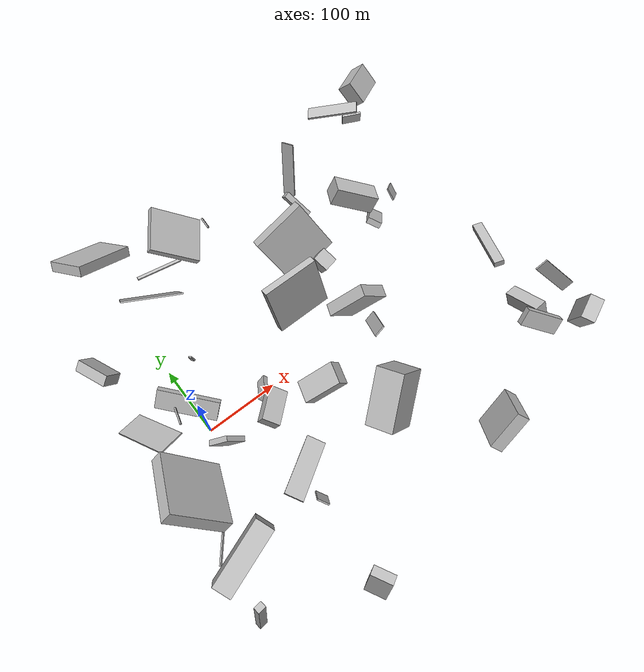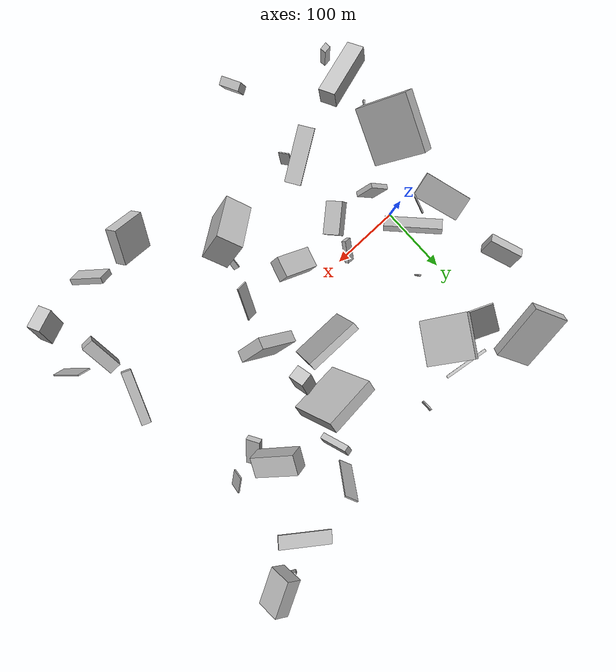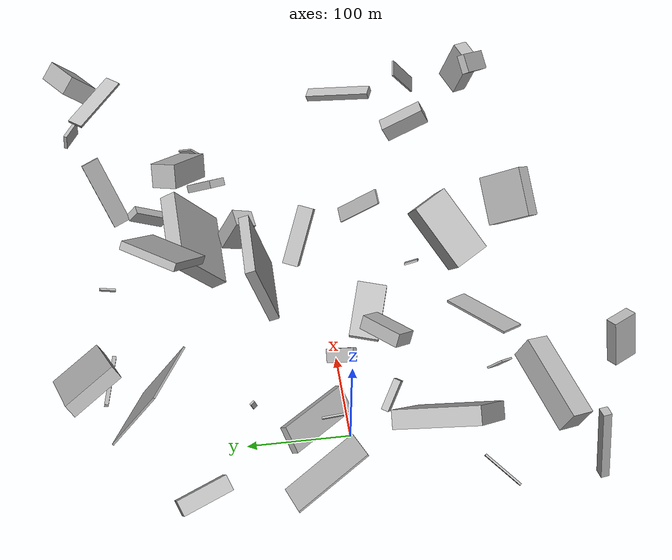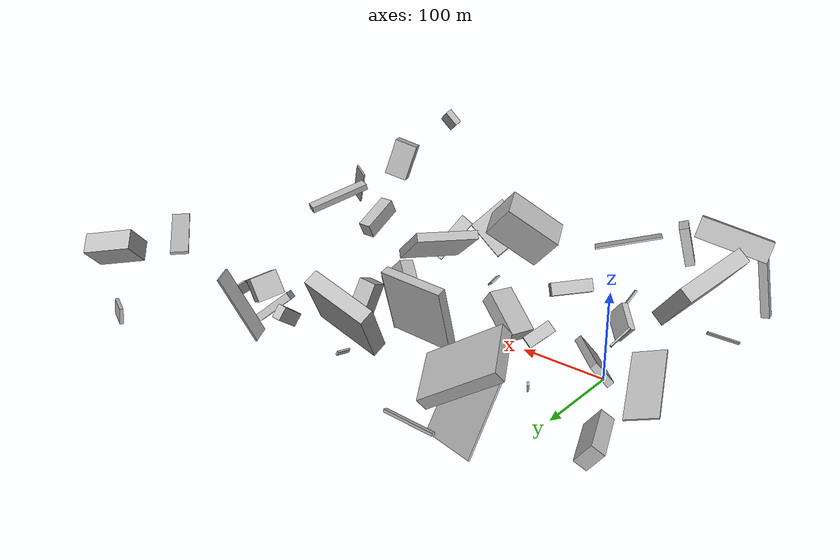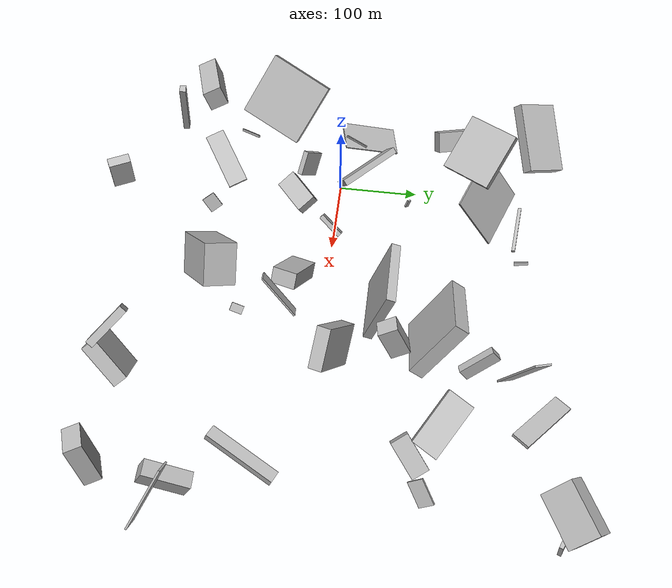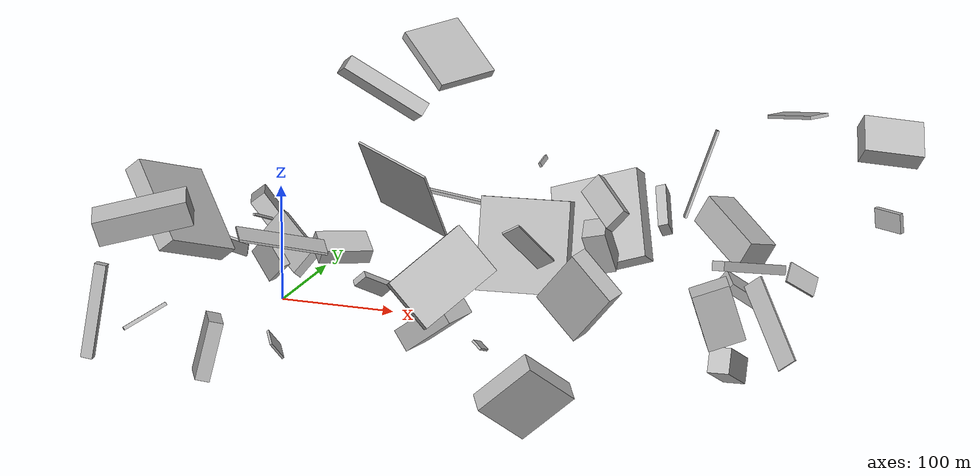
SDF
<sdf version="1.6">
 <world name="default">
  <scene>
   <sky><clouds><speed>12</speed></clouds></sky>
   <ambient>0.4 0.4 0.4 1</ambient>
   <background>0.7 0.7 0.7 1</background>
   <shadows>1</shadows>
  </scene>
  <gravity>0 0 -9.8066</gravity>
  <magnetic_field>6e-06 2.3e-05 -4.2e-05</magnetic_field>
  <physics default="0" name="default_physics" type="ode">
   <ode>
    <solver>
     <type>quick</type>
     <iters>10</iters>
     <sor>1.0</sor>
     <use_dynamic_moi_rescaling>0</use_dynamic_moi_rescaling>
    </solver>
    <constraints>
     <cfm>0</cfm>
     <erp>0.2</erp>
     <contact_max_correcting_vel>100</contact_max_correcting_vel>
     <contact_surface_layer>0.001</contact_surface_layer>
    </constraints>
   </ode>
   <max_step_size>0.004</max_step_size>
   <real_time_factor>1</real_time_factor>
   <real_time_update_rate>250</real_time_update_rate>
  </physics>
  <light name="sun" type="directional">
   <pose>0 0 10 0 0 0</pose>
   <diffuse>0.8 0.8 0.8 1</diffuse>
   <specular>0.2 0.2 0.2 1</specular>
   <attenuation>
    <range>1000</range>
    <constant>0.9</constant>
    <linear>0.01</linear>
    <quadratic>0.001</quadratic>
   </attenuation>
   <direction>-0.5 0.1 -0.9</direction>
  </light>
  <model name="building_1">
   <static>0</static>
   <pose>348.1035532357613 145.4164840120628 41.896070795514106 0.4490838609523101 0.24270501351556142 1.0828048197999844</pose>
   <link name="link">
    <gravity>0</gravity>
    <pose>0 0 13.5 0 0 0</pose>
    <collision name="collision"><geometry><box><size>30 65 27</size></box></geometry></collision>
    <visual name="visual">
     <cast_shadows>0</cast_shadows>
     <geometry><box><size>30 65 27</size></box></geometry>
     <material>
      <script>
       <uri>model://HANNAS_wall/materials/scripts</uri>
       <uri>model://HANNAS_wall/materials/textures</uri>
       <name>vrc/HANNAS_wall</name>
      </script>
     </material>
    </visual>
   </link>
  </model>
  <model name="building_2">
   <static>0</static>
   <pose>191.55788591173032 80.69643101173136 85.61499205709151 -2.8483809849088653 0.03830397342939365 -3.1413923623626103</pose>
   <link name="link">
    <gravity>0</gravity>
    <pose>0 0 40.0 0 0 0</pose>
    <collision name="collision"><geometry><box><size>80 11 80</size></box></geometry></collision>
    <visual name="visual">
     <cast_shadows>0</cast_shadows>
     <geometry><box><size>80 11 80</size></box></geometry>
     <material>
      <script>
       <uri>model://HANNAS_wall/materials/scripts</uri>
       <uri>model://HANNAS_wall/materials/textures</uri>
       <name>vrc/HANNAS_wall</name>
      </script>
     </material>
    </visual>
   </link>
  </model>
  <model name="building_3">
   <static>0</static>
   <pose>208.2956873176658 -128.18785361727873 61.55189520577248 0.6679794309747284 -0.34388095428399146 -1.1454106801110602</pose>
   <link name="link">
    <gravity>0</gravity>
    <pose>0 0 24.0 0 0 0</pose>
    <collision name="collision"><geometry><box><size>37 74 48</size></box></geometry></collision>
    <visual name="visual">
     <cast_shadows>0</cast_shadows>
     <geometry><box><size>37 74 48</size></box></geometry>
     <material>
      <script>
       <uri>model://HANNAS_wall/materials/scripts</uri>
       <uri>model://HANNAS_wall/materials/textures</uri>
       <name>vrc/HANNAS_wall</name>
      </script>
     </material>
    </visual>
   </link>
  </model>
  <model name="building_4">
   <static>0</static>
   <pose>0.8264050997854753 203.54226670475907 54.67012253182121 1.808281569622076 -0.5482000044668345 1.0542967172581335</pose>
   <link name="link">
    <gravity>0</gravity>
    <pose>0 0 40.0 0 0 0</pose>
    <collision name="collision"><geometry><box><size>2 80 80</size></box></geometry></collision>
    <visual name="visual">
     <cast_shadows>0</cast_shadows>
     <geometry><box><size>2 80 80</size></box></geometry>
     <material>
      <script>
       <uri>model://HANNAS_wall/materials/scripts</uri>
       <uri>model://HANNAS_wall/materials/textures</uri>
       <name>vrc/HANNAS_wall</name>
      </script>
     </material>
    </visual>
   </link>
  </model>
  <model name="building_5">
   <static>0</static>
   <pose>256.4157683336183 77.22898811696005 43.970163355195865 1.166684185117849 0.19638203812592014 -2.9841373091028287</pose>
   <link name="link">
    <gravity>0</gravity>
    <pose>0 0 11.5 0 0 0</pose>
    <collision name="collision"><geometry><box><size>20 41 23</size></box></geometry></collision>
    <visual name="visual">
     <cast_shadows>0</cast_shadows>
     <geometry><box><size>20 41 23</size></box></geometry>
     <material>
      <script>
       <uri>model://HANNAS_wall/materials/scripts</uri>
       <uri>model://HANNAS_wall/materials/textures</uri>
       <name>vrc/HANNAS_wall</name>
      </script>
     </material>
    </visual>
   </link>
  </model>
  <model name="building_6">
   <static>0</static>
   <pose>472.4952018742821 -133.89937172559712 73.26797997993594 1.9331112366453398 0.6601657654257855 3.007817559053068</pose>
   <link name="link">
    <gravity>0</gravity>
    <pose>0 0 1.0 0 0 0</pose>
    <collision name="collision"><geometry><box><size>18 76 2</size></box></geometry></collision>
    <visual name="visual">
     <cast_shadows>0</cast_shadows>
     <geometry><box><size>18 76 2</size></box></geometry>
     <material>
      <script>
       <uri>model://HANNAS_wall/materials/scripts</uri>
       <uri>model://HANNAS_wall/materials/textures</uri>
       <name>vrc/HANNAS_wall</name>
      </script>
     </material>
    </visual>
   </link>
  </model>
  <model name="building_7">
   <static>0</static>
   <pose>-70.28901997221512 -131.06221980888998 17.613961900618644 -0.7858554430322714 -0.9997347083173196 3.1040903914115714</pose>
   <link name="link">
    <gravity>0</gravity>
    <pose>0 0 1.0 0 0 0</pose>
    <collision name="collision"><geometry><box><size>3 42 2</size></box></geometry></collision>
    <visual name="visual">
     <cast_shadows>0</cast_shadows>
     <geometry><box><size>3 42 2</size></box></geometry>
     <material>
      <script>
       <uri>model://HANNAS_wall/materials/scripts</uri>
       <uri>model://HANNAS_wall/materials/textures</uri>
       <name>vrc/HANNAS_wall</name>
      </script>
     </material>
    </visual>
   </link>
  </model>
  <model name="building_8">
   <static>0</static>
   <pose>451.83561065220016 267.88690239433095 103.9723875040823 0.7928882252819565 0.17300503324710412 0.5059515899944587</pose>
   <link name="link">
    <gravity>0</gravity>
    <pose>0 0 11.0 0 0 0</pose>
    <collision name="collision"><geometry><box><size>53 34 22</size></box></geometry></collision>
    <visual name="visual">
     <cast_shadows>0</cast_shadows>
     <geometry><box><size>53 34 22</size></box></geometry>
     <material>
      <script>
       <uri>model://HANNAS_wall/materials/scripts</uri>
       <uri>model://HANNAS_wall/materials/textures</uri>
       <name>vrc/HANNAS_wall</name>
      </script>
     </material>
    </visual>
   </link>
  </model>
  <model name="building_9">
   <static>0</static>
   <pose>319.46818823110556 -224.42786926014094 40.10942977047213 2.5465502489647447 -0.6472572300943025 -2.16113866802114</pose>
   <link name="link">
    <gravity>0</gravity>
    <pose>0 0 28.0 0 0 0</pose>
    <collision name="collision"><geometry><box><size>55 18 56</size></box></geometry></collision>
    <visual name="visual">
     <cast_shadows>0</cast_shadows>
     <geometry><box><size>55 18 56</size></box></geometry>
     <material>
      <script>
       <uri>model://HANNAS_wall/materials/scripts</uri>
       <uri>model://HANNAS_wall/materials/textures</uri>
       <name>vrc/HANNAS_wall</name>
      </script>
     </material>
    </visual>
   </link>
  </model>
  <model name="building_10">
   <static>0</static>
   <pose>-62.94780862746143 32.81244645099434 34.433030661661434 2.6820239664841496 0.3153401525229863 0.2646315167578116</pose>
   <link name="link">
    <gravity>0</gravity>
    <pose>0 0 1.0 0 0 0</pose>
    <collision name="collision"><geometry><box><size>36 80 2</size></box></geometry></collision>
    <visual name="visual">
     <cast_shadows>0</cast_shadows>
     <geometry><box><size>36 80 2</size></box></geometry>
     <material>
      <script>
       <uri>model://HANNAS_wall/materials/scripts</uri>
       <uri>model://HANNAS_wall/materials/textures</uri>
       <name>vrc/HANNAS_wall</name>
      </script>
     </material>
    </visual>
   </link>
  </model>
  <model name="building_11">
   <static>0</static>
   <pose>111.60090856780971 148.71932469499495 163.15634874704443 0.11454057672930437 -0.9449658125044605 -0.6783018509912118</pose>
   <link name="link">
    <gravity>0</gravity>
    <pose>0 0 31.0 0 0 0</pose>
    <collision name="collision"><geometry><box><size>8 56 62</size></box></geometry></collision>
    <visual name="visual">
     <cast_shadows>0</cast_shadows>
     <geometry><box><size>8 56 62</size></box></geometry>
     <material>
      <script>
       <uri>model://HANNAS_wall/materials/scripts</uri>
       <uri>model://HANNAS_wall/materials/textures</uri>
       <name>vrc/HANNAS_wall</name>
      </script>
     </material>
    </visual>
   </link>
  </model>
  <model name="building_12">
   <static>0</static>
   <pose>244.64620919067755 -23.662783977432657 64.78678832771173 0.6575747799899577 -0.5083595041420869 0.10554290170240528</pose>
   <link name="link">
    <gravity>0</gravity>
    <pose>0 0 28.0 0 0 0</pose>
    <collision name="collision"><geometry><box><size>16 2 56</size></box></geometry></collision>
    <visual name="visual">
     <cast_shadows>0</cast_shadows>
     <geometry><box><size>16 2 56</size></box></geometry>
     <material>
      <script>
       <uri>model://HANNAS_wall/materials/scripts</uri>
       <uri>model://HANNAS_wall/materials/textures</uri>
       <name>vrc/HANNAS_wall</name>
      </script>
     </material>
    </visual>
   </link>
  </model>
  <model name="building_13">
   <static>0</static>
   <pose>437.2109812275175 -134.71311111468486 23.412082972839848 0.023510371672273697 -0.46273840696237245 -1.5463430744842273</pose>
   <link name="link">
    <gravity>0</gravity>
    <pose>0 0 10.5 0 0 0</pose>
    <collision name="collision"><geometry><box><size>53 18 21</size></box></geometry></collision>
    <visual name="visual">
     <cast_shadows>0</cast_shadows>
     <geometry><box><size>53 18 21</size></box></geometry>
     <material>
      <script>
       <uri>model://HANNAS_wall/materials/scripts</uri>
       <uri>model://HANNAS_wall/materials/textures</uri>
       <name>vrc/HANNAS_wall</name>
      </script>
     </material>
    </visual>
   </link>
  </model>
  <model name="building_14">
   <static>0</static>
   <pose>428.2855204183656 -49.002433703107386 84.99366570254259 0.2728242970709966 0.1617288553588246 2.752386210909252</pose>
   <link name="link">
    <gravity>0</gravity>
    <pose>0 0 4.0 0 0 0</pose>
    <collision name="collision"><geometry><box><size>13 77 8</size></box></geometry></collision>
    <visual name="visual">
     <cast_shadows>0</cast_shadows>
     <geometry><box><size>13 77 8</size></box></geometry>
     <material>
      <script>
       <uri>model://HANNAS_wall/materials/scripts</uri>
       <uri>model://HANNAS_wall/materials/textures</uri>
       <name>vrc/HANNAS_wall</name>
      </script>
     </material>
    </visual>
   </link>
  </model>
  <model name="building_15">
   <static>0</static>
   <pose>454.5893975376871 270.4790578045363 29.687962561261177 -0.09350711173330292 0.005918964392277572 2.712514559713269</pose>
   <link name="link">
    <gravity>0</gravity>
    <pose>0 0 9.0 0 0 0</pose>
    <collision name="collision"><geometry><box><size>29 4 18</size></box></geometry></collision>
    <visual name="visual">
     <cast_shadows>0</cast_shadows>
     <geometry><box><size>29 4 18</size></box></geometry>
     <material>
      <script>
       <uri>model://HANNAS_wall/materials/scripts</uri>
       <uri>model://HANNAS_wall/materials/textures</uri>
       <name>vrc/HANNAS_wall</name>
      </script>
     </material>
    </visual>
   </link>
  </model>
  <model name="building_16">
   <static>0</static>
   <pose>288.53869643442556 210.86800484771106 41.159911357212074 -0.36747537192060564 -0.22709445688964996 -1.1868518736039635</pose>
   <link name="link">
    <gravity>0</gravity>
    <pose>0 0 40.0 0 0 0</pose>
    <collision name="collision"><geometry><box><size>19 2 80</size></box></geometry></collision>
    <visual name="visual">
     <cast_shadows>0</cast_shadows>
     <geometry><box><size>19 2 80</size></box></geometry>
     <material>
      <script>
       <uri>model://HANNAS_wall/materials/scripts</uri>
       <uri>model://HANNAS_wall/materials/textures</uri>
       <name>vrc/HANNAS_wall</name>
      </script>
     </material>
    </visual>
   </link>
  </model>
  <model name="building_17">
   <static>0</static>
   <pose>-36.897198539430825 -95.46919443781638 68.17390131087564 0.7569311126135977 -0.3368765018687952 -1.9157092687022954</pose>
   <link name="link">
    <gravity>0</gravity>
    <pose>0 0 40.0 0 0 0</pose>
    <collision name="collision"><geometry><box><size>80 17 80</size></box></geometry></collision>
    <visual name="visual">
     <cast_shadows>0</cast_shadows>
     <geometry><box><size>80 17 80</size></box></geometry>
     <material>
      <script>
       <uri>model://HANNAS_wall/materials/scripts</uri>
       <uri>model://HANNAS_wall/materials/textures</uri>
       <name>vrc/HANNAS_wall</name>
      </script>
     </material>
    </visual>
   </link>
  </model>
  <model name="building_18">
   <static>0</static>
   <pose>377.19830446416324 222.53189681024492 136.53099095855032 1.4935995940669433 -1.3387127759593558 2.522760664329101</pose>
   <link name="link">
    <gravity>0</gravity>
    <pose>0 0 9.0 0 0 0</pose>
    <collision name="collision"><geometry><box><size>3 69 18</size></box></geometry></collision>
    <visual name="visual">
     <cast_shadows>0</cast_shadows>
     <geometry><box><size>3 69 18</size></box></geometry>
     <material>
      <script>
       <uri>model://HANNAS_wall/materials/scripts</uri>
       <uri>model://HANNAS_wall/materials/textures</uri>
       <name>vrc/HANNAS_wall</name>
      </script>
     </material>
    </visual>
   </link>
  </model>
  <model name="building_19">
   <static>0</static>
   <pose>454.27222932567497 -190.3451252659267 74.26865379344903 -0.3024937263232417 -0.13264276825650642 2.038829785124481</pose>
   <link name="link">
    <gravity>0</gravity>
    <pose>0 0 25.0 0 0 0</pose>
    <collision name="collision"><geometry><box><size>18 31 50</size></box></geometry></collision>
    <visual name="visual">
     <cast_shadows>0</cast_shadows>
     <geometry><box><size>18 31 50</size></box></geometry>
     <material>
      <script>
       <uri>model://HANNAS_wall/materials/scripts</uri>
       <uri>model://HANNAS_wall/materials/textures</uri>
       <name>vrc/HANNAS_wall</name>
      </script>
     </material>
    </visual>
   </link>
  </model>
  <model name="building_20">
   <static>0</static>
   <pose>-65.39895438554721 145.73348679772982 23.156585940467487 0.6301842494052066 -0.13824881277340148 -1.1978492373251977</pose>
   <link name="link">
    <gravity>0</gravity>
    <pose>0 0 13.0 0 0 0</pose>
    <collision name="collision"><geometry><box><size>49 15 26</size></box></geometry></collision>
    <visual name="visual">
     <cast_shadows>0</cast_shadows>
     <geometry><box><size>49 15 26</size></box></geometry>
     <material>
      <script>
       <uri>model://HANNAS_wall/materials/scripts</uri>
       <uri>model://HANNAS_wall/materials/textures</uri>
       <name>vrc/HANNAS_wall</name>
      </script>
     </material>
    </visual>
   </link>
  </model>
  <model name="building_21">
   <static>0</static>
   <pose>69.84312636165251 -42.869338668543136 61.3701257704419 0.4925794213155327 0.1070783423665671 0.7265431014843321</pose>
   <link name="link">
    <gravity>0</gravity>
    <pose>0 0 7.0 0 0 0</pose>
    <collision name="collision"><geometry><box><size>45 24 14</size></box></geometry></collision>
    <visual name="visual">
     <cast_shadows>0</cast_shadows>
     <geometry><box><size>45 24 14</size></box></geometry>
     <material>
      <script>
       <uri>model://HANNAS_wall/materials/scripts</uri>
       <uri>model://HANNAS_wall/materials/textures</uri>
       <name>vrc/HANNAS_wall</name>
      </script>
     </material>
    </visual>
   </link>
  </model>
  <model name="building_22">
   <static>0</static>
   <pose>272.5643211926291 197.43109616965467 67.87356583586 2.7306341650297945 0.8873565181558949 1.4543081542493155</pose>
   <link name="link">
    <gravity>0</gravity>
    <pose>0 0 21.5 0 0 0</pose>
    <collision name="collision"><geometry><box><size>15 9 43</size></box></geometry></collision>
    <visual name="visual">
     <cast_shadows>0</cast_shadows>
     <geometry><box><size>15 9 43</size></box></geometry>
     <material>
      <script>
       <uri>model://HANNAS_wall/materials/scripts</uri>
       <uri>model://HANNAS_wall/materials/textures</uri>
       <name>vrc/HANNAS_wall</name>
      </script>
     </material>
    </visual>
   </link>
  </model>
  <model name="building_23">
   <static>0</static>
   <pose>155.18767007648478 223.8955133420141 72.81901309754615 -0.21908967634821508 0.38824255664124774 3.043073371130226</pose>
   <link name="link">
    <gravity>0</gravity>
    <pose>0 0 2.0 0 0 0</pose>
    <collision name="collision"><geometry><box><size>2 16 4</size></box></geometry></collision>
    <visual name="visual">
     <cast_shadows>0</cast_shadows>
     <geometry><box><size>2 16 4</size></box></geometry>
     <material>
      <script>
       <uri>model://HANNAS_wall/materials/scripts</uri>
       <uri>model://HANNAS_wall/materials/textures</uri>
       <name>vrc/HANNAS_wall</name>
      </script>
     </material>
    </visual>
   </link>
  </model>
  <model name="building_24">
   <static>0</static>
   <pose>210.66144051709273 -97.62760268568405 17.144893999580084 -2.212911301029622 -0.36655941573821654 -1.6583026714551297</pose>
   <link name="link">
    <gravity>0</gravity>
    <pose>0 0 5.0 0 0 0</pose>
    <collision name="collision"><geometry><box><size>15 2 10</size></box></geometry></collision>
    <visual name="visual">
     <cast_shadows>0</cast_shadows>
     <geometry><box><size>15 2 10</size></box></geometry>
     <material>
      <script>
       <uri>model://HANNAS_wall/materials/scripts</uri>
       <uri>model://HANNAS_wall/materials/textures</uri>
       <name>vrc/HANNAS_wall</name>
      </script>
     </material>
    </visual>
   </link>
  </model>
  <model name="building_25">
   <static>0</static>
   <pose>53.201414799914936 -273.61874011439244 49.18910221960083 -1.3261875162072985 0.0006043950597966123 2.056573535587469</pose>
   <link name="link">
    <gravity>0</gravity>
    <pose>0 0 6.0 0 0 0</pose>
    <collision name="collision"><geometry><box><size>27 50 12</size></box></geometry></collision>
    <visual name="visual">
     <cast_shadows>0</cast_shadows>
     <geometry><box><size>27 50 12</size></box></geometry>
     <material>
      <script>
       <uri>model://HANNAS_wall/materials/scripts</uri>
       <uri>model://HANNAS_wall/materials/textures</uri>
       <name>vrc/HANNAS_wall</name>
      </script>
     </material>
    </visual>
   </link>
  </model>
  <model name="building_26">
   <static>0</static>
   <pose>-48.609530395471175 -180.3795493051431 114.09166111577338 0.6748772277778171 -1.1779128231936151 -1.8985885907501217</pose>
   <link name="link">
    <gravity>0</gravity>
    <pose>0 0 11.5 0 0 0</pose>
    <collision name="collision"><geometry><box><size>24 80 23</size></box></geometry></collision>
    <visual name="visual">
     <cast_shadows>0</cast_shadows>
     <geometry><box><size>24 80 23</size></box></geometry>
     <material>
      <script>
       <uri>model://HANNAS_wall/materials/scripts</uri>
       <uri>model://HANNAS_wall/materials/textures</uri>
       <name>vrc/HANNAS_wall</name>
      </script>
     </material>
    </visual>
   </link>
  </model>
  <model name="building_27">
   <static>0</static>
   <pose>62.59666357552491 -166.38056374497393 13.280168238478273 -1.0882177598421128 -0.5341747573673304 0.3015040439771076</pose>
   <link name="link">
    <gravity>0</gravity>
    <pose>0 0 8.5 0 0 0</pose>
    <collision name="collision"><geometry><box><size>2 20 17</size></box></geometry></collision>
    <visual name="visual">
     <cast_shadows>0</cast_shadows>
     <geometry><box><size>2 20 17</size></box></geometry>
     <material>
      <script>
       <uri>model://HANNAS_wall/materials/scripts</uri>
       <uri>model://HANNAS_wall/materials/textures</uri>
       <name>vrc/HANNAS_wall</name>
      </script>
     </material>
    </visual>
   </link>
  </model>
  <model name="building_28">
   <static>0</static>
   <pose>78.18104700919284 -2.6184077470971934 18.76482563437312 -0.6977117655226512 -0.48745997811126224 -2.109467830130197</pose>
   <link name="link">
    <gravity>0</gravity>
    <pose>0 0 7.0 0 0 0</pose>
    <collision name="collision"><geometry><box><size>33 6 14</size></box></geometry></collision>
    <visual name="visual">
     <cast_shadows>0</cast_shadows>
     <geometry><box><size>33 6 14</size></box></geometry>
     <material>
      <script>
       <uri>model://HANNAS_wall/materials/scripts</uri>
       <uri>model://HANNAS_wall/materials/textures</uri>
       <name>vrc/HANNAS_wall</name>
      </script>
     </material>
    </visual>
   </link>
  </model>
  <model name="building_29">
   <static>0</static>
   <pose>49.13521534660864 -124.53185301424702 100.00800554261934 2.305941109327578 -1.264860603225712 -0.18918542701584695</pose>
   <link name="link">
    <gravity>0</gravity>
    <pose>0 0 11.5 0 0 0</pose>
    <collision name="collision"><geometry><box><size>2 75 23</size></box></geometry></collision>
    <visual name="visual">
     <cast_shadows>0</cast_shadows>
     <geometry><box><size>2 75 23</size></box></geometry>
     <material>
      <script>
       <uri>model://HANNAS_wall/materials/scripts</uri>
       <uri>model://HANNAS_wall/materials/textures</uri>
       <name>vrc/HANNAS_wall</name>
      </script>
     </material>
    </visual>
   </link>
  </model>
  <model name="building_30">
   <static>0</static>
   <pose>361.3216868936076 102.43875053179839 24.75969559776569 -2.6846744721086435 -0.8526711390708002 0.21682940168005144</pose>
   <link name="link">
    <gravity>0</gravity>
    <pose>0 0 23.0 0 0 0</pose>
    <collision name="collision"><geometry><box><size>9 21 46</size></box></geometry></collision>
    <visual name="visual">
     <cast_shadows>0</cast_shadows>
     <geometry><box><size>9 21 46</size></box></geometry>
     <material>
      <script>
       <uri>model://HANNAS_wall/materials/scripts</uri>
       <uri>model://HANNAS_wall/materials/textures</uri>
       <name>vrc/HANNAS_wall</name>
      </script>
     </material>
    </visual>
   </link>
  </model>
  <model name="building_31">
   <static>0</static>
   <pose>21.049908282782972 4.246410067106758 33.04073174820576 -1.324076700472135 -0.8524809957732024 0.5488600458095461</pose>
   <link name="link">
    <gravity>0</gravity>
    <pose>0 0 40.0 0 0 0</pose>
    <collision name="collision"><geometry><box><size>27 8 80</size></box></geometry></collision>
    <visual name="visual">
     <cast_shadows>0</cast_shadows>
     <geometry><box><size>27 8 80</size></box></geometry>
     <material>
      <script>
       <uri>model://HANNAS_wall/materials/scripts</uri>
       <uri>model://HANNAS_wall/materials/textures</uri>
       <name>vrc/HANNAS_wall</name>
      </script>
     </material>
    </visual>
   </link>
  </model>
  <model name="building_32">
   <static>0</static>
   <pose>428.8731657849321 136.6154813164535 15.76661919982598 0.8655216379363027 -0.541804406233078 -0.521791845346925</pose>
   <link name="link">
    <gravity>0</gravity>
    <pose>0 0 14.5 0 0 0</pose>
    <collision name="collision"><geometry><box><size>2 19 29</size></box></geometry></collision>
    <visual name="visual">
     <cast_shadows>0</cast_shadows>
     <geometry><box><size>2 19 29</size></box></geometry>
     <material>
      <script>
       <uri>model://HANNAS_wall/materials/scripts</uri>
       <uri>model://HANNAS_wall/materials/textures</uri>
       <name>vrc/HANNAS_wall</name>
      </script>
     </material>
    </visual>
   </link>
  </model>
  <model name="building_33">
   <static>0</static>
   <pose>32.75735044770789 246.63628572464194 100.28125415286203 0.5905590436454196 0.8781643892908071 -2.1524084976962294</pose>
   <link name="link">
    <gravity>0</gravity>
    <pose>0 0 40.0 0 0 0</pose>
    <collision name="collision"><geometry><box><size>13 51 80</size></box></geometry></collision>
    <visual name="visual">
     <cast_shadows>0</cast_shadows>
     <geometry><box><size>13 51 80</size></box></geometry>
     <material>
      <script>
       <uri>model://HANNAS_wall/materials/scripts</uri>
       <uri>model://HANNAS_wall/materials/textures</uri>
       <name>vrc/HANNAS_wall</name>
      </script>
     </material>
    </visual>
   </link>
  </model>
  <model name="building_34">
   <static>0</static>
   <pose>173.62988939776295 -48.85027746833541 27.040070625630605 2.203063432809172 0.05835501994898787 -1.8636014188270595</pose>
   <link name="link">
    <gravity>0</gravity>
    <pose>0 0 29.0 0 0 0</pose>
    <collision name="collision"><geometry><box><size>31 20 58</size></box></geometry></collision>
    <visual name="visual">
     <cast_shadows>0</cast_shadows>
     <geometry><box><size>31 20 58</size></box></geometry>
     <material>
      <script>
       <uri>model://HANNAS_wall/materials/scripts</uri>
       <uri>model://HANNAS_wall/materials/textures</uri>
       <name>vrc/HANNAS_wall</name>
      </script>
     </material>
    </visual>
   </link>
  </model>
  <model name="building_35">
   <static>0</static>
   <pose>-69.87593669499205 -220.82746474505007 49.48520450463396 1.4212304695241198 -0.07530454344011535 -1.450014904410844</pose>
   <link name="link">
    <gravity>0</gravity>
    <pose>0 0 5.0 0 0 0</pose>
    <collision name="collision"><geometry><box><size>8 80 10</size></box></geometry></collision>
    <visual name="visual">
     <cast_shadows>0</cast_shadows>
     <geometry><box><size>8 80 10</size></box></geometry>
     <material>
      <script>
       <uri>model://HANNAS_wall/materials/scripts</uri>
       <uri>model://HANNAS_wall/materials/textures</uri>
       <name>vrc/HANNAS_wall</name>
      </script>
     </material>
    </visual>
   </link>
  </model>
  <model name="building_36">
   <static>0</static>
   <pose>15.423899304151144 -46.96042752051131 59.362245033006545 -2.264950193138658 -0.15642272677893004 1.0427079960173584</pose>
   <link name="link">
    <gravity>0</gravity>
    <pose>0 0 15.5 0 0 0</pose>
    <collision name="collision"><geometry><box><size>7 30 31</size></box></geometry></collision>
    <visual name="visual">
     <cast_shadows>0</cast_shadows>
     <geometry><box><size>7 30 31</size></box></geometry>
     <material>
      <script>
       <uri>model://HANNAS_wall/materials/scripts</uri>
       <uri>model://HANNAS_wall/materials/textures</uri>
       <name>vrc/HANNAS_wall</name>
      </script>
     </material>
    </visual>
   </link>
  </model>
  <model name="building_37">
   <static>0</static>
   <pose>237.76413803844747 127.10754931468553 56.81493810239991 2.1508414344738362 0.31316103350826036 -3.0923197755880354</pose>
   <link name="link">
    <gravity>0</gravity>
    <pose>0 0 9.0 0 0 0</pose>
    <collision name="collision"><geometry><box><size>80 80 18</size></box></geometry></collision>
    <visual name="visual">
     <cast_shadows>0</cast_shadows>
     <geometry><box><size>80 80 18</size></box></geometry>
     <material>
      <script>
       <uri>model://HANNAS_wall/materials/scripts</uri>
       <uri>model://HANNAS_wall/materials/textures</uri>
       <name>vrc/HANNAS_wall</name>
      </script>
     </material>
    </visual>
   </link>
  </model>
  <model name="building_38">
   <static>0</static>
   <pose>-27.24722120537803 4.60828582370479 71.10180406297597 1.9767983949604606 0.276758729125981 3.0391359469882087</pose>
   <link name="link">
    <gravity>0</gravity>
    <pose>0 0 14.5 0 0 0</pose>
    <collision name="collision"><geometry><box><size>2 2 29</size></box></geometry></collision>
    <visual name="visual">
     <cast_shadows>0</cast_shadows>
     <geometry><box><size>2 2 29</size></box></geometry>
     <material>
      <script>
       <uri>model://HANNAS_wall/materials/scripts</uri>
       <uri>model://HANNAS_wall/materials/textures</uri>
       <name>vrc/HANNAS_wall</name>
      </script>
     </material>
    </visual>
   </link>
  </model>
  <model name="building_39">
   <static>0</static>
   <pose>34.57675068405095 90.92421981497323 20.559996133996176 1.5653836314191962 -0.35138851896905177 -0.9454018747041076</pose>
   <link name="link">
    <gravity>0</gravity>
    <pose>0 0 1.0 0 0 0</pose>
    <collision name="collision"><geometry><box><size>5 10 2</size></box></geometry></collision>
    <visual name="visual">
     <cast_shadows>0</cast_shadows>
     <geometry><box><size>5 10 2</size></box></geometry>
     <material>
      <script>
       <uri>model://HANNAS_wall/materials/scripts</uri>
       <uri>model://HANNAS_wall/materials/textures</uri>
       <name>vrc/HANNAS_wall</name>
      </script>
     </material>
    </visual>
   </link>
  </model>
  <model name="building_40">
   <static>0</static>
   <pose>352.4574047708188 -179.74803242295258 172.92720373352938 0.6475211675977427 -0.8245290392307291 0.3262087643390264</pose>
   <link name="link">
    <gravity>0</gravity>
    <pose>0 0 4.0 0 0 0</pose>
    <collision name="collision"><geometry><box><size>20 46 8</size></box></geometry></collision>
    <visual name="visual">
     <cast_shadows>0</cast_shadows>
     <geometry><box><size>20 46 8</size></box></geometry>
     <material>
      <script>
       <uri>model://HANNAS_wall/materials/scripts</uri>
       <uri>model://HANNAS_wall/materials/textures</uri>
       <name>vrc/HANNAS_wall</name>
      </script>
     </material>
    </visual>
   </link>
  </model>
  <model name="building_41">
   <static>0</static>
   <pose>241.26286088921847 22.398042747213417 43.00413602132165 2.3313643818961722 -0.17086140276440515 1.2297648908271688</pose>
   <link name="link">
    <gravity>0</gravity>
    <pose>0 0 24.5 0 0 0</pose>
    <collision name="collision"><geometry><box><size>17 65 49</size></box></geometry></collision>
    <visual name="visual">
     <cast_shadows>0</cast_shadows>
     <geometry><box><size>17 65 49</size></box></geometry>
     <material>
      <script>
       <uri>model://HANNAS_wall/materials/scripts</uri>
       <uri>model://HANNAS_wall/materials/textures</uri>
       <name>vrc/HANNAS_wall</name>
      </script>
     </material>
    </visual>
   </link>
  </model>
  <model name="building_42">
   <static>0</static>
   <pose>39.01496361245915 230.0052252148623 35.73320081765354 -2.063303716481267 -1.409711731635998 -1.201442113709122</pose>
   <link name="link">
    <gravity>0</gravity>
    <pose>0 0 32.5 0 0 0</pose>
    <collision name="collision"><geometry><box><size>3 4 65</size></box></geometry></collision>
    <visual name="visual">
     <cast_shadows>0</cast_shadows>
     <geometry><box><size>3 4 65</size></box></geometry>
     <material>
      <script>
       <uri>model://HANNAS_wall/materials/scripts</uri>
       <uri>model://HANNAS_wall/materials/textures</uri>
       <name>vrc/HANNAS_wall</name>
      </script>
     </material>
    </visual>
   </link>
  </model>
 </world>
</sdf>
